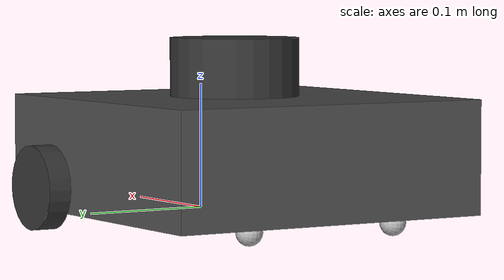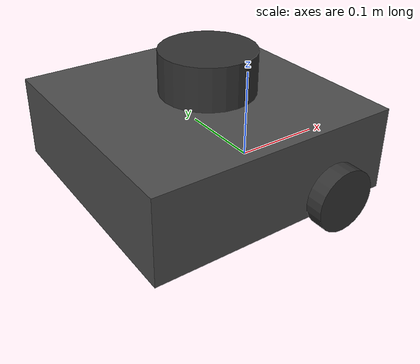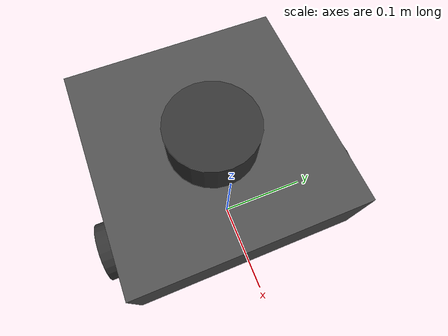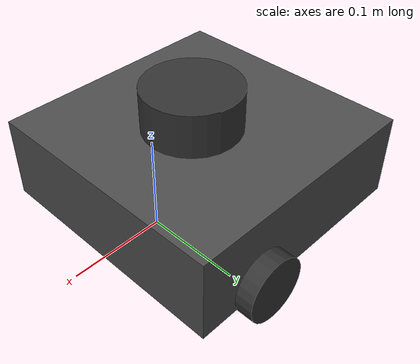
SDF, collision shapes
<?xml version="1.0" ?>
<sdf version="1.8">
  <model name="turtlebot3_waffle_pi">
  <pose>0.0 0.0 0.0 0.0 0.0 0.0</pose>

    <link name="base_footprint"/>

    <link name="base_link">

      <inertial>
        <pose>-0.064 0 0.048 0 0 0</pose>
        <inertia>
          <ixx>4.2111447e-02</ixx>
          <ixy>0</ixy>
          <ixz>0</ixz>
          <iyy>4.2111447e-02</iyy>
          <iyz>0</iyz>
          <izz>7.5254874e-02</izz>
        </inertia>
        <mass>1.3729096e+00</mass>
      </inertial>

      <collision name="base_collision">
        <pose>-0.064 0 0.048 0 0 0</pose>
        <geometry>
          <box>
            <size>0.265 0.265 0.089</size>
          </box>
        </geometry>
      </collision>

      <visual name="base_visual">
        <pose>-0.064 0 0 0 0 0</pose>
        <geometry>
          <mesh>
            <uri>model://turtlebot3_common/meshes/bases/waffle_pi_base.stl</uri>
            <scale>0.001 0.001 0.001</scale>
          </mesh>
        </geometry>
        <material>
          <ambient>0.3 0.3 0.3 1.0</ambient>
          <diffuse>0.3 0.3 0.3 1.0</diffuse>
        </material>
      </visual>
    </link>

    <link name="imu_link">
      <!-- IMU moved to center of rotation (X=0) to eliminate centripetal acceleration artifacts -->
      <!-- Original position was x=-0.032, which caused Y-axis drift during turns -->
      <pose>0.0 0 0.068 0 0 0</pose>
      <inertial>
        <mass>0.01</mass>
        <inertia>
          <ixx>0.0001</ixx><iyy>0.0001</iyy><izz>0.0001</izz>
        </inertia>
      </inertial>
      <sensor name="imu_sensor" type="imu">
        <always_on>true</always_on>
        <update_rate>200</update_rate>
        <topic>/imu</topic>
        <imu>
          <angular_velocity>
            <x>
              <noise type="gaussian">
                <mean>0.0</mean>
                <stddev>2e-4</stddev> <!--close noise vals from these tags -->
              </noise>
            </x>
            <y>
              <noise type="gaussian">
                <mean>0.0</mean>
                <stddev>2e-4</stddev> <!--close noise vals from these tags -->
              </noise>
            </y>
            <z>
              <noise type="gaussian">
                <mean>0.0</mean>
                <stddev>1e-3</stddev> <!--close noise vals from these tags -->
              </noise>
            </z>
          </angular_velocity>
          <linear_acceleration>
            <x>
              <noise type="gaussian">
                <mean>0.0</mean>
                <stddev>1.7e-2</stddev> <!--close noise vals from these tags -->
              </noise>
            </x>
            <y>
              <noise type="gaussian">
                <mean>0.0</mean>
                <stddev>1.7e-2</stddev> <!--close noise vals from these tags -->
              </noise>
            </y>
            <z>
              <noise type="gaussian">
                <mean>0.0</mean>
                <stddev>1.7e-2</stddev> <!--close noise vals from these tags -->
              </noise>
            </z>
          </linear_acceleration>
        </imu>
      </sensor>
    </link>

    <link name="base_scan">
      <inertial>
        <pose>-0.052 0 0.111 0 0 0</pose>
        <inertia>
          <ixx>0.001</ixx>
          <ixy>0.000</ixy>
          <ixz>0.000</ixz>
          <iyy>0.001</iyy>
          <iyz>0.000</iyz>
          <izz>0.001</izz>
        </inertia>
        <mass>0.114</mass>
      </inertial>

      <collision name="lidar_sensor_collision">
        <pose>-0.052 0 0.111 0 0 0</pose>
        <geometry>
          <cylinder>
            <radius>0.0508</radius>
            <length>0.055</length>
          </cylinder>
        </geometry>
      </collision>

      <visual name="lidar_sensor_visual">
        <pose>-0.064 0 0.121 0 0 0</pose>
        <geometry>
          <mesh>
            <uri>model://turtlebot3_common/meshes/sensors/lds.stl</uri>
            <scale>0.001 0.001 0.001</scale>
          </mesh>
        </geometry>
        <material>
          <ambient>0.2 0.2 0.2 1.0</ambient>
          <diffuse>0.2 0.2 0.2 1.0</diffuse>
        </material>
      </visual>

      <!-- LIDAR sensor disabled for VIO project (using only IMU + Camera) -->
    </link>

    <link name="wheel_left_link">

      <inertial>
        <pose>0.0 0.144 0.023 -1.57 0 0</pose>
        <inertia>
          <ixx>1.8158194e-03</ixx>
          <ixy>-9.3392e-12</ixy>
          <ixz>1.04909e-11</ixz>
          <iyy>3.2922126e-03</iyy>
          <iyz>5.75694e-11</iyz>
          <izz>1.8158194e-03</izz>
        </inertia>
        <mass>2.8498940e-02</mass>
      </inertial>

      <collision name="wheel_left_collision">
        <pose>0.0 0.144 0.023 -1.57 0 0</pose>
        <geometry>
          <cylinder>
            <radius>0.033</radius>
            <length>0.018</length>
          </cylinder>
        </geometry>
        <surface>
          <!-- This friction pamareter don't contain reliable data!! -->
          <friction>
            <ode>
              <mu>100000</mu>
              <mu2>100000</mu2>
              <fdir1>0 0 0</fdir1>
              <slip1>0.0</slip1>
              <slip2>0.0</slip2>
            </ode>
          </friction>
          <contact>
            <ode>
              <soft_cfm>0</soft_cfm>
              <soft_erp>0.2</soft_erp>
              <kp>1e+5</kp>
              <kd>1</kd>
              <max_vel>0.01</max_vel>
              <min_depth>0.001</min_depth>
            </ode>
          </contact>
        </surface>
      </collision>

      <visual name="wheel_left_visual">
        <pose>0.0 0.144 0.023 0 0 0</pose>
        <geometry>
          <mesh>
            <uri>model://turtlebot3_common/meshes/wheels/left_tire.stl</uri>
            <scale>0.001 0.001 0.001</scale>
          </mesh>
        </geometry>
        <material>
          <ambient>0.2 0.2 0.2 1.0</ambient>
          <diffuse>0.2 0.2 0.2 1.0</diffuse>
        </material>
      </visual>
    </link>

    <link name="wheel_right_link">

      <inertial>
        <pose>0.0 -0.144 0.023 -1.57 0 0</pose>
        <inertia>
          <ixx>1.8158194e-03</ixx>
          <ixy>-9.3392e-12</ixy>
          <ixz>1.04909e-11</ixz>
          <iyy>3.2922126e-03</iyy>
          <iyz>5.75694e-11</iyz>
          <izz>1.8158194e-03</izz>
        </inertia>
        <mass>2.8498940e-02</mass>
      </inertial>

      <collision name="wheel_right_collision">
        <pose>0.0 -0.144 0.023 -1.57 0 0</pose>
        <geometry>
          <cylinder>
            <radius>0.033</radius>
            <length>0.018</length>
          </cylinder>
        </geometry>
        <surface>
          <!-- This friction pamareter don't contain reliable data!! -->
          <friction>
            <ode>
              <mu>100000</mu>
              <mu2>100000</mu2>
              <fdir1>0 0 0</fdir1>
              <slip1>0.0</slip1>
              <slip2>0.0</slip2>
            </ode>
          </friction>
          <contact>
            <ode>
              <soft_cfm>0</soft_cfm>
              <soft_erp>0.2</soft_erp>
              <kp>1e+5</kp>
              <kd>1</kd>
              <max_vel>0.01</max_vel>
              <min_depth>0.001</min_depth>
            </ode>
          </contact>
        </surface>
      </collision>

      <visual name="wheel_right_visual">
        <pose>0.0 -0.144 0.023 0 0 0</pose>
        <geometry>
          <mesh>
            <uri>model://turtlebot3_common/meshes/wheels/right_tire.stl</uri>
            <scale>0.001 0.001 0.001</scale>
          </mesh>
        </geometry>
        <material>
          <ambient>0.2 0.2 0.2 1.0</ambient>
          <diffuse>0.2 0.2 0.2 1.0</diffuse>
        </material>
      </visual>
    </link>

    <link name='caster_back_right_link'>
      <!-- Z position adjusted: drive wheel bottom at z=0.023-0.033=-0.010 relative to base_link -->
      <!-- Caster radius=0.010, so caster center should be at z=-0.010+0.010=0.0 for level robot -->
      <!-- But base_link is 0.010 above base_footprint, so relative to base_link: z=0.0-0.010=-0.010? -->
      <!-- Let's try z=0.000 to raise the casters and level the robot -->
      <pose>-0.177 -0.064 0.000 -1.57 0 0</pose>
      <inertial>
        <!-- Increased mass for stability (was 0.001) -->
        <mass>1.0</mass>
        <inertia>
          <ixx>0.001</ixx>
          <ixy>0.000</ixy>
          <ixz>0.000</ixz>
          <iyy>0.001</iyy>
          <iyz>0.000</iyz>
          <izz>0.001</izz>
        </inertia>
      </inertial>
      <collision name='collision'>
        <geometry>
          <!-- Larger sphere for better ground contact (was 0.005) -->
          <sphere>
            <radius>0.010</radius>
          </sphere>
        </geometry>
        <surface>
          <contact>
            <ode>
              <!-- Soft contact parameters to prevent bouncing -->
              <soft_cfm>0.01</soft_cfm>
              <soft_erp>0.2</soft_erp>
              <!-- Lower stiffness to reduce jumping (was 1e+4) -->
              <kp>1e+3</kp>
              <kd>10</kd>
              <!-- Allow some penetration to prevent popping -->
              <max_vel>0.01</max_vel>
              <min_depth>0.003</min_depth>
            </ode>
          </contact>
          <friction>
            <ode>
              <!-- Frictionless caster -->
              <mu>0.0</mu>
              <mu2>0.0</mu2>
              <slip1>1.0</slip1>
              <slip2>1.0</slip2>
            </ode>
          </friction>
        </surface>
      </collision>
    </link>

    <link name='caster_back_left_link'>
      <!-- Z position adjusted to match right caster for level robot -->
      <pose>-0.177 0.064 0.000 -1.57 0 0</pose>
      <inertial>
        <!-- Increased mass for stability (was 0.001) -->
        <mass>1.0</mass>
        <inertia>
          <ixx>0.001</ixx>
          <ixy>0.000</ixy>
          <ixz>0.000</ixz>
          <iyy>0.001</iyy>
          <iyz>0.000</iyz>
          <izz>0.001</izz>
        </inertia>
      </inertial>
      <collision name='collision'>
        <geometry>
          <!-- Larger sphere for better ground contact (was 0.005) -->
          <sphere>
            <radius>0.010</radius>
          </sphere>
        </geometry>
        <surface>
          <contact>
            <ode>
              <!-- Soft contact parameters to prevent bouncing -->
              <soft_cfm>0.01</soft_cfm>
              <soft_erp>0.2</soft_erp>
              <!-- Lower stiffness to reduce jumping (was 1e+4) -->
              <kp>1e+3</kp>
              <kd>10</kd>
              <!-- Allow some penetration to prevent popping -->
              <max_vel>0.01</max_vel>
              <min_depth>0.003</min_depth>
            </ode>
          </contact>
          <friction>
            <ode>
              <!-- Frictionless caster -->
              <mu>0.0</mu>
              <mu2>0.0</mu2>
              <slip1>1.0</slip1>
              <slip2>1.0</slip2>
            </ode>
          </friction>
        </surface>
      </collision>
    </link>

    <link name="camera_link">
      <pose>0.10 0.0 0.093 0 0 0</pose>  <!-- Moved forward from 0.076 to 0.10 -->
      <inertial>
        <inertia>
          <ixx>0.001</ixx>
          <ixy>0.000</ixy>
          <ixz>0.000</ixz>
          <iyy>0.001</iyy>
          <iyz>0.000</iyz>
          <izz>0.001</izz>
        </inertia>
        <mass>0.035</mass>
      </inertial>
      <!-- Visual mesh removed - was blocking camera view -->
      <sensor name="camera" type="camera">
        <always_on>true</always_on>
        <visualize>false</visualize>
        <update_rate>10</update_rate>
        <topic>/camera</topic>
        <camera name="picam">
          <horizontal_fov>2.50</horizontal_fov> <!-- ~143 degrees for wider view -->
          <image>
              <width>1280</width>
              <height>720</height>
              <format>R8G8B8</format>
          </image>
          <clip>
              <near>0.01</near>  <!-- Reduced from 0.03 to see closer objects -->
              <far>100</far>
          </clip>
          <noise>
            <type>gaussian</type>
            <mean>0.0</mean>
            <stddev>0.007</stddev> <!--close noise vals from these tags -->
          </noise>
        </camera>
      </sensor>
    </link>

    <joint name="base_joint" type="fixed">
      <parent>base_footprint</parent>
      <child>base_link</child>
      <pose>0.0 0.0 0.010 0 0 0</pose>
    </joint>

    <joint name="wheel_left_joint" type="revolute">
      <parent>base_link</parent>
      <child>wheel_left_link</child>
      <pose>0.0 0.144 0.023 -1.57 0 0</pose>
      <axis>
        <xyz>0 0 1</xyz>
        <limit>
          <effort>20</effort>
        </limit>
      </axis>
    </joint>

    <joint name="wheel_right_joint" type="revolute">
      <parent>base_link</parent>
      <child>wheel_right_link</child>
      <pose>0.0 -0.144 0.023 -1.57 0 0</pose>
      <axis>
        <xyz>0 0 1</xyz>
        <limit>
          <effort>20</effort>
        </limit>
      </axis>
    </joint>

    <joint name='caster_back_right_joint' type='ball'>
      <parent>base_link</parent>
      <child>caster_back_right_link</child>
    </joint>

    <joint name='caster_back_left_joint' type='ball'>
      <parent>base_link</parent>
      <child>caster_back_left_link</child>
    </joint>

    <joint name="imu_joint" type="fixed">
      <parent>base_link</parent>
      <child>imu_link</child>
      <!-- Updated to match imu_link pose: center of rotation (X=0) -->
      <pose>0.0 0 0.068 0 0 0</pose>
      <axis>
        <xyz>0 0 1</xyz>
      </axis>
    </joint>

    <joint name="lidar_joint" type="fixed">
      <parent>base_link</parent>
      <child>base_scan</child>
      <pose>-0.064 0 0.121 0 0 0</pose>
      <axis>
        <xyz>0 0 1</xyz>
      </axis>
    </joint>

    <joint name="camera_joint" type="fixed">
      <parent>base_link</parent>
      <child>camera_link</child>
    </joint>

    <!-- Diff Drive Plugin (Ignition) -->
    <plugin filename="ignition-gazebo-diff-drive-system"
            name="ignition::gazebo::systems::DiffDrive">
      <left_joint>wheel_left_joint</left_joint>
      <right_joint>wheel_right_joint</right_joint>
      <wheel_separation>0.287</wheel_separation>
      <wheel_radius>0.033</wheel_radius>
      <max_linear_acceleration>1.0</max_linear_acceleration>
      <topic>cmd_vel</topic>
      <odom_topic>odom</odom_topic>
      <frame_id>odom</frame_id>
      <child_frame_id>base_footprint</child_frame_id>
      <odom_publish_frequency>30</odom_publish_frequency>
    </plugin>

    <!-- Joint State Publisher -->
    <plugin filename="ignition-gazebo-joint-state-publisher-system"
            name="ignition::gazebo::systems::JointStatePublisher">
      <topic>joint_states</topic>
      <joint_name>wheel_left_joint</joint_name>
      <joint_name>wheel_right_joint</joint_name>
    </plugin>

    <!-- Pose Publisher Plugin (for TF) -->
    <plugin filename="libignition-gazebo-pose-publisher-system.so"
            name="ignition::gazebo::systems::PosePublisher">
      <publish_link_pose>true</publish_link_pose>
      <publish_sensor_pose>true</publish_sensor_pose>
      <publish_collision_pose>false</publish_collision_pose>
      <publish_visual_pose>false</publish_visual_pose>
      <publish_nested_model_pose>false</publish_nested_model_pose>
      <use_pose_vector_msg>true</use_pose_vector_msg>
      <static_publisher>true</static_publisher>
      <static_update_frequency>1</static_update_frequency>
      <update_frequency>50</update_frequency>
    </plugin>

  </model>
</sdf>
